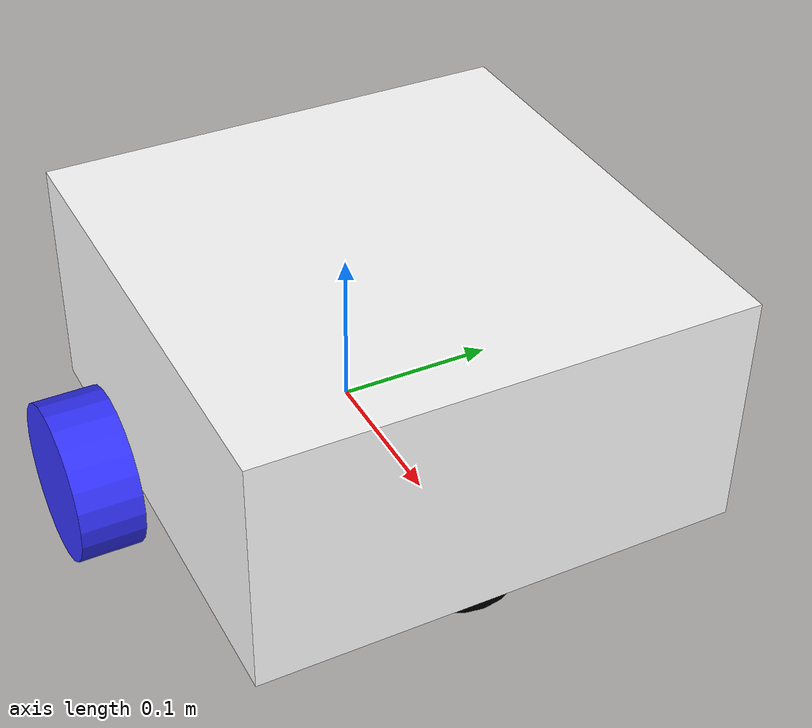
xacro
<?xml version="1.0"?>
<robot xmlns:xacro="http://www.ros.org/wiki/xacro"  name="robot">

    <xacro:include filename="inertial_macros.xacro"/>

    <!-- Descripción de colores en RGB-->
    <material name="white">
        <color rgba="1 1 1 1"/>
    </material>

    <material name="orange">
        <color rgba="1 0.3 0.1 1"/>
    </material>

    <material name="blue">
        <color rgba="0.2 0.2 1 1"/>
    </material>

    <material name="black">
        <color rgba="0 0 0 1"/>
    </material>

    <!-- Enlace Base-->

    <link name="base_link">

    </link>

    <!-- Enlace Base Footprint -->
    <joint name="base_footprint" type="fixed">
        <parent link="base_link"/>
        <child link="base_footprint"/>
        <origin xyz="0 0 0" rpy="0 0 0"/>
    </joint>

    <link name="base_footprint">

    </link>

    <!-- Descripción del chasis-->
    <joint name="chassis_joint" type="fixed">
        <parent link="base_link"/>
        <child link="chassis"/>
        <origin xyz="-0.1 0 0"/>
    </joint>

    <link name="chassis">
        <visual>
            <origin xyz="0.15 0 0.075" rpy="0 0 0"/>
            <geometry>
                <box size="0.3 0.3 0.15"/>
            </geometry>
            <material name="white"/>
        </visual>
        <collision>
            <origin xyz="0.15 0 0.075" rpy="0 0 0"/>
            <geometry>
                <box size="0.3 0.3 0.15"/>
            </geometry>
        </collision>
        <xacro:inertial_box mass="0.5" x="0.3" y="0.3" z="0.15">
            <origin xyz="0.15 0 0.075" rpy="0 0 0"/>
        </xacro:inertial_box>
    </link>

    <gazebo reference="chassis">
        <material>Gazebo/White</material>
    </gazebo>

    <!-- Descripción de la llanta izquierda-->

    <joint name="left_wheel_joint" type="continuous">
        <parent link="base_link"/>
        <child link="left_wheel"/>
        <origin xyz="0 0.175 0" rpy="-${pi/2} 0 0"/>
        <axis xyz="0 0 1"/>
    </joint>

    <link name="left_wheel">
        <visual>
            <geometry>
                <cylinder length="0.04" radius="0.05" />
            </geometry>
            <material name="blue"/>
        </visual>
        <collision>
            <geometry>
                <cylinder length="0.04" radius="0.05" />
            </geometry>
        </collision>
        <xacro:inertial_cylinder mass="0.1" length="0.05" radius="0.05">
            <origin xyz="0 0 0" rpy="0 0 0"/>
        </xacro:inertial_cylinder>
    </link>

    <gazebo reference="left_wheel">
        <material>Gazebo/Blue</material>
    </gazebo>

    <!-- Descripción de la llanta derecha  -->

    <joint name="right_wheel_joint" type="continuous">
        <parent link="base_link"/>
        <child link="right_wheel"/>
        <origin xyz="0 -0.175 0" rpy="${pi/2} 0 0"/>
        <axis xyz="0 0 -1"/>
    </joint>

    <link name="right_wheel">
        <visual>
            <geometry>
                <cylinder length="0.04" radius="0.05" />
            </geometry>
            <material name="blue"/>
        </visual>
        <collision>
            <geometry>
                <cylinder length="0.04" radius="0.05" />
            </geometry>
        </collision>
        <xacro:inertial_cylinder mass="0.1" length="0.05" radius="0.05">
            <origin xyz="0 0 0" rpy="0 0 0"/>
        </xacro:inertial_cylinder>
    </link>

    <gazebo reference="right_wheel">
        <material>Gazebo/Blue</material>
    </gazebo>

    <!-- Descripción de rueda giratoria-->

    <joint name="caster_wheel_joint" type="fixed">
        <parent link="chassis"/>
        <child link="caster_wheel"/>
        <origin xyz="0.24 0 0" rpy="0 0 0"/>
    </joint>

    <link name="caster_wheel">
        <visual>
            <geometry>
                <sphere radius="0.05" />
            </geometry>
            <material name="black"/>
        </visual>
        <collision>
            <geometry>
                <sphere radius="0.05" />
            </geometry>
        </collision>
        <xacro:inertial_sphere mass="0.1" radius="0.05">
            <origin xyz="0 0 0" rpy="0 0 0"/>
        </xacro:inertial_sphere>
    </link>

    <gazebo reference="caster_wheel">
        <material>Gazebo/Black</material>
        <mu1 value="0.001"/>
        <mu2 value="0.001"/>
    </gazebo>

    <!-- Descripción de rueda giratoria de atrás-->

    <joint name="back_caster_wheel_joint" type="fixed">
        <parent link="chassis"/>
        <child link="back_caster_wheel"/>
        <origin xyz="0.085 0 0" rpy="0 0 0"/>
    </joint>

    <link name="back_caster_wheel">
        <visual>
            <geometry>
                <sphere radius="0.05" />
            </geometry>
            <material name="black"/>
        </visual>
        <collision>
            <geometry>
                <sphere radius="0.05" />
            </geometry>
        </collision>
        <xacro:inertial_sphere mass="0.1" radius="0.05">
            <origin xyz="0 0 0" rpy="0 0 0"/>
        </xacro:inertial_sphere>
    </link>

    <gazebo reference="back_caster_wheel">
        <material>Gazebo/Black</material>
        <mu1 value="0.001"/>
        <mu2 value="0.001"/>
    </gazebo>

</robot>

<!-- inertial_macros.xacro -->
<robot xmlns:xacro="http://www.ros.org/wiki/xacro" >

    <!-- Calculos de inercia https://en.wikipedia.org/wiki/List_of_moments_of_inertia -->

    <xacro:macro name="inertial_sphere" params="mass radius *origin">
        <inertial>
            <xacro:insert_block name="origin"/>
            <mass value="${mass}" />
            <inertia ixx="${(2/5) * mass * (radius*radius)}" ixy="0.0" ixz="0.0"
                    iyy="${(2/5) * mass * (radius*radius)}" iyz="0.0"
                    izz="${(2/5) * mass * (radius*radius)}" />
        </inertial>
    </xacro:macro>

    <xacro:macro name="inertial_box" params="mass x y z *origin">
        <inertial>
            <xacro:insert_block name="origin"/>
            <mass value="${mass}" />
            <inertia ixx="${(1/12) * mass * (y*y+z*z)}" ixy="0.0" ixz="0.0"
                    iyy="${(1/12) * mass * (x*x+z*z)}" iyz="0.0"
                    izz="${(1/12) * mass * (x*x+y*y)}" />
        </inertial>
    </xacro:macro>

    <xacro:macro name="inertial_cylinder" params="mass length radius *origin">
        <inertial>
            <xacro:insert_block name="origin"/>
            <mass value="${mass}" />
            <inertia ixx="${(1/12) * mass * (3*radius*radius + length*length)}" ixy="0.0" ixz="0.0"
                    iyy="${(1/12) * mass * (3*radius*radius + length*length)}" iyz="0.0"
                    izz="${(1/2) * mass * (radius*radius)}" />
        </inertial>
    </xacro:macro>

</robot>
